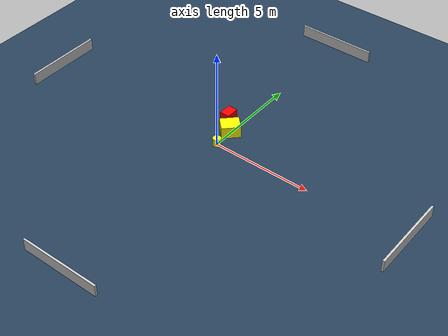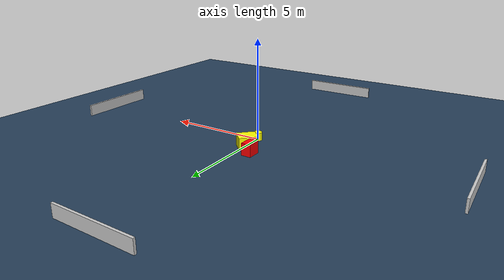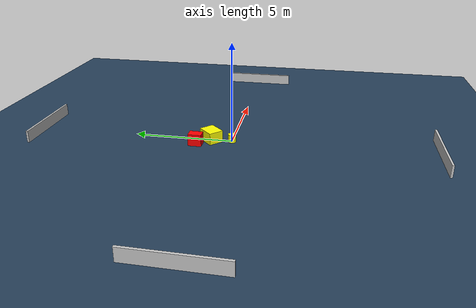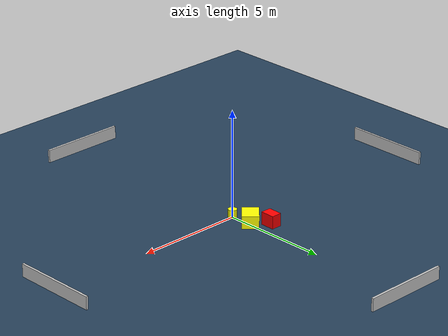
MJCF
<?xml version="1.0" ?>
<mujoco model="generated_environment">
  <option timestep="0.01" integrator="RK4" cone="elliptic"/>
  <default>
    <geom density="1"/>
  </default>
  <asset>
    <texture builtin="gradient" height="3072" name="skybox" rgb1="0.3 0.5 0.7" rgb2="0 0 0" type="skybox" width="512"/>
    <texture builtin="checker" height="300" name="groundplane" rgb1="0.2 0.3 0.4" rgb2="0.1 0.2 0.3" type="2d" width="300"/>
    <material name="groundplane" reflectance="0.2" texrepeat="5 5" texture="groundplane"/>
  </asset>
  <worldbody>
    <light dir="0 0 -1" directional="true" pos="0 0 1.5"/>
    <geom condim="3" friction="0.5 0.005 0.001" material="groundplane" name="floor" pos="0 0 0" size="0 0 0.05" type="plane"/>
    <body name="walls">
      <geom name="wall_1" condim="4" pos="-10.0 0.0 0.3" rgba="0.800000011920929 0.800000011920929 0.800000011920929 1.0" size="0.05 2.0 0.3" type="box"/>
      <geom name="wall_2" condim="4" pos="10.0 0.0 0.3" rgba="0.800000011920929 0.800000011920929 0.800000011920929 1.0" size="0.05 2.0 0.3" type="box"/>
      <geom name="wall_3" condim="4" pos="0.0 -10.0 0.3" rgba="0.800000011920929 0.800000011920929 0.800000011920929 1.0" size="2.0 0.05 0.3" type="box"/>
      <geom name="wall_4" condim="4" pos="0.0 10.0 0.3" rgba="0.800000011920929 0.800000011920929 0.800000011920929 1.0" size="2.0 0.05 0.3" type="box"/>
    </body>
    <body name="robot">
      <joint name="joint_x" type="slide" pos="0 0 0" axis="1 0 0"/>
      <joint name="joint_y" type="slide" pos="0 0 0" axis="0 1 0"/>
      <geom name="robot" type="cylinder" pos="0.0 0.0 0.2" size="0.2 0.2 0.0" mass="5.0" friction="1.0 0.005 0.0001" condim="4" rgba="1.0 1.0 0.0 1.0"/>
    </body>
    <body name="obstacle_1_movable">
      <geom name="obstacle_1_movable" condim="4" pos="-0.054226179501769035 1.0503698933097811 0.3" euler="0 0 225.58796719632235" friction="0.0 0.005 0.001" rgba="1.0 1.0 0.0 1.0" size="0.4625534018043331 0.38160451188310296 0.3" type="box" mass="0.1"/>
      <joint type="free"/>
    </body>
    <body name="obstacle_2_static">
      <geom name="obstacle_2_static" condim="4" pos="-0.6549615312096758 1.7158038242019606 0.3" euler="0 0 359.33866340125905" friction="0.0 0.005 0.001" rgba="1.0 0.0 0.0 1.0" size="0.24372122233219334 0.3327453076527898 0.3" type="box"/>
    </body>
  </worldbody>
  <actuator>
    <motor name="actuator_x" joint="joint_x" gear="1" ctrlrange="-1 1"/>
    <motor name="actuator_y" joint="joint_y" gear="1" ctrlrange="-1 1"/>
  </actuator>
</mujoco>
